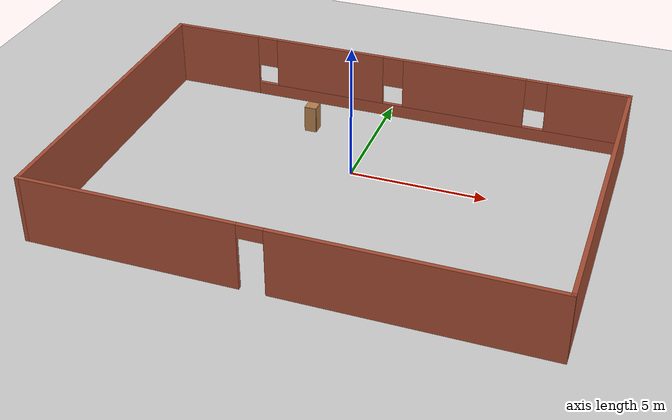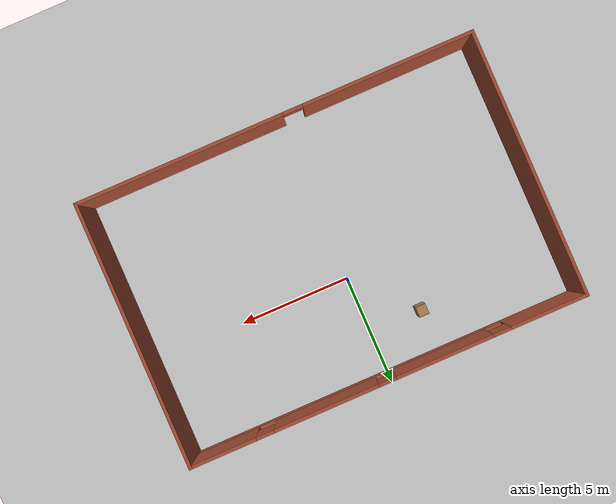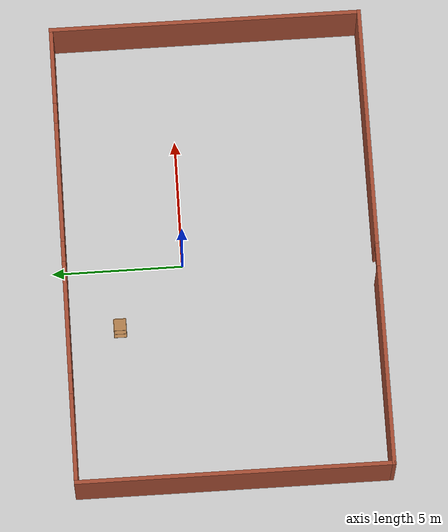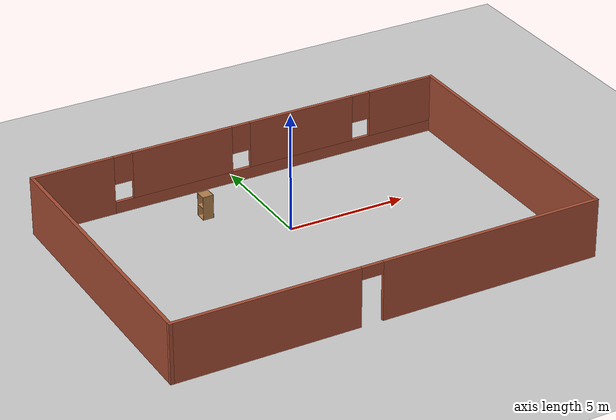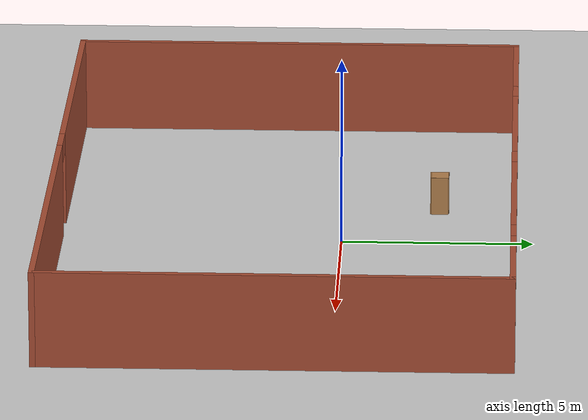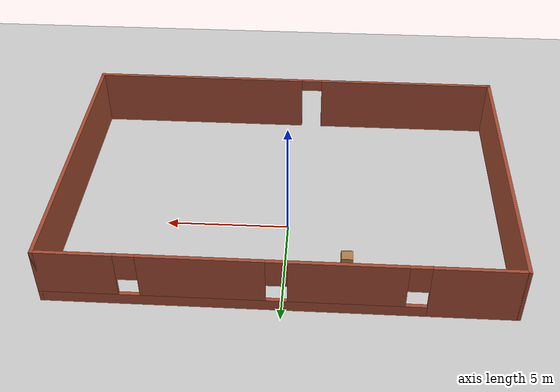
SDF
<sdf version="1.7">
 <world name="default">
  <light name="sun" type="directional">
   <pose>0 0 10 0 -0 0</pose>
   <diffuse>0.8 0.8 0.8 1</diffuse>
   <specular>0.2 0.2 0.2 1</specular>
   <attenuation>
    <range>1000</range>
    <constant>0.9</constant>
    <linear>0.01</linear>
    <quadratic>0.001</quadratic>
   </attenuation>
   <direction>-0.5 0.1 -0.9</direction>
   <spot><inner_angle>0</inner_angle><outer_angle>0</outer_angle><falloff>0</falloff></spot>
  </light>
  <model name="ground_plane">
   <static>1</static>
   <link name="link">
    <collision name="collision">
     <geometry><plane><normal>0 0 1</normal><size>100 100</size></plane></geometry>
     <surface>
      <contact><collide_bitmask>65535</collide_bitmask></contact>
      <friction><ode><mu>100</mu><mu2>50</mu2></ode></friction>
     </surface>
    </collision>
    <visual name="visual">
     <cast_shadows>0</cast_shadows>
     <geometry><plane><normal>0 0 1</normal><size>100 100</size></plane></geometry>
     <material>
      <script><uri>file://media/materials/scripts/gazebo.material</uri><name>Gazebo/Grey</name></script>
     </material>
    </visual>
   </link>
  </model>
  <gravity>0 0 -9.8</gravity>
  <magnetic_field>6e-06 2.3e-05 -4.2e-05</magnetic_field>
  <atmosphere type="adiabatic"/>
  <physics type="ode">
   <max_step_size>0.001</max_step_size>
   <real_time_factor>1</real_time_factor>
   <real_time_update_rate>1000</real_time_update_rate>
  </physics>
  <scene><ambient>0.4 0.4 0.4 1</ambient><background>0.7 0.7 0.7 1</background><shadows>1</shadows></scene>
  <audio><device>default</device></audio>
  <spherical_coordinates>
   <surface_model>EARTH_WGS84</surface_model>
   <latitude_deg>0</latitude_deg>
   <longitude_deg>0</longitude_deg>
   <elevation>0</elevation>
   <heading_deg>0</heading_deg>
  </spherical_coordinates>
  <model name="room">
   <pose>0.12464 -1.43234 0 0 -0 0</pose>
   <link name="Wall_3">
    <collision name="Wall_3_Collision">
     <geometry><box><size>12 0.15 2.5</size></box></geometry>
     <pose>0 0 1.25 0 -0 0</pose>
    </collision>
    <visual name="Wall_3_Visual">
     <pose>0 0 1.25 0 -0 0</pose>
     <geometry><box><size>12 0.15 2.5</size></box></geometry>
     <material>
      <script><uri>file://media/materials/scripts/gazebo.material</uri><name>Gazebo/Bricks</name></script>
      <ambient>1 1 1 1</ambient>
     </material>
     <meta><layer>0</layer></meta>
    </visual>
    <pose>-8.925 0 0 0 -0 1.5708</pose>
   </link>
   <link name="Wall_4">
    <pose>0 5.925 0 0 -0 0</pose>
    <visual name="Wall_4_Visual_0">
     <pose>-7.26141 0 1.25 0 -0 0</pose>
     <geometry><box><size>3.47719 0.15 2.5</size></box></geometry>
     <material>
      <script><uri>file://media/materials/scripts/gazebo.material</uri><name>Gazebo/Bricks</name></script>
      <ambient>1 1 1 1</ambient>
     </material>
     <meta><layer>0</layer></meta>
    </visual>
    <collision name="Wall_4_Collision_0">
     <geometry><box><size>3.47719 0.15 2.5</size></box></geometry>
     <pose>-7.26141 0 1.25 0 -0 0</pose>
    </collision>
    <visual name="Wall_4_Visual_1">
     <pose>1.73859 0 0.25 0 -0 0</pose>
     <geometry><box><size>14.5228 0.15 0.5</size></box></geometry>
     <material>
      <script><uri>file://media/materials/scripts/gazebo.material</uri><name>Gazebo/Bricks</name></script>
      <ambient>1 1 1 1</ambient>
     </material>
     <meta><layer>0</layer></meta>
    </visual>
    <collision name="Wall_4_Collision_1">
     <geometry><box><size>14.5228 0.15 0.5</size></box></geometry>
     <pose>1.73859 0 0.25 0 -0 0</pose>
    </collision>
    <visual name="Wall_4_Visual_2">
     <pose>-2.53733 0 1.5 0 -0 0</pose>
     <geometry><box><size>4.37097 0.15 2</size></box></geometry>
     <material>
      <script><uri>file://media/materials/scripts/gazebo.material</uri><name>Gazebo/Bricks</name></script>
      <ambient>1 1 1 1</ambient>
     </material>
     <meta><layer>0</layer></meta>
    </visual>
    <collision name="Wall_4_Collision_2">
     <geometry><box><size>4.37097 0.15 2</size></box></geometry>
     <pose>-2.53733 0 1.5 0 -0 0</pose>
    </collision>
    <visual name="Wall_4_Visual_3">
     <pose>2.80095 0 1.5 0 -0 0</pose>
     <geometry><box><size>4.70557 0.15 2</size></box></geometry>
     <material>
      <script><uri>file://media/materials/scripts/gazebo.material</uri><name>Gazebo/Bricks</name></script>
      <ambient>1 1 1 1</ambient>
     </material>
     <meta><layer>0</layer></meta>
    </visual>
    <collision name="Wall_4_Collision_3">
     <geometry><box><size>4.70557 0.15 2</size></box></geometry>
     <pose>2.80095 0 1.5 0 -0 0</pose>
    </collision>
    <visual name="Wall_4_Visual_4">
     <pose>7.47687 0 1.5 0 -0 0</pose>
     <geometry><box><size>3.04627 0.15 2</size></box></geometry>
     <material>
      <script><uri>file://media/materials/scripts/gazebo.material</uri><name>Gazebo/Bricks</name></script>
      <ambient>1 1 1 1</ambient>
     </material>
     <meta><layer>0</layer></meta>
    </visual>
    <collision name="Wall_4_Collision_4">
     <geometry><box><size>3.04627 0.15 2</size></box></geometry>
     <pose>7.47687 0 1.5 0 -0 0</pose>
    </collision>
    <visual name="Wall_4_Visual_5">
     <pose>-5.12281 0 1.9 0 -0 0</pose>
     <geometry><box><size>0.8 0.15 1.2</size></box></geometry>
     <material>
      <script><uri>file://media/materials/scripts/gazebo.material</uri><name>Gazebo/Bricks</name></script>
      <ambient>1 1 1 1</ambient>
     </material>
     <meta><layer>0</layer></meta>
    </visual>
    <collision name="Wall_4_Collision_5">
     <geometry><box><size>0.8 0.15 1.2</size></box></geometry>
     <pose>-5.12281 0 1.9 0 -0 0</pose>
    </collision>
    <visual name="Wall_4_Visual_6">
     <pose>0.048162 0 1.9 0 -0 0</pose>
     <geometry><box><size>0.8 0.15 1.2</size></box></geometry>
     <material>
      <script><uri>file://media/materials/scripts/gazebo.material</uri><name>Gazebo/Bricks</name></script>
      <ambient>1 1 1 1</ambient>
     </material>
     <meta><layer>0</layer></meta>
    </visual>
    <collision name="Wall_4_Collision_6">
     <geometry><box><size>0.8 0.15 1.2</size></box></geometry>
     <pose>0.048162 0 1.9 0 -0 0</pose>
    </collision>
    <visual name="Wall_4_Visual_7">
     <pose>5.55373 0 1.9 0 -0 0</pose>
     <geometry><box><size>0.8 0.15 1.2</size></box></geometry>
     <material>
      <script><uri>file://media/materials/scripts/gazebo.material</uri><name>Gazebo/Bricks</name></script>
      <ambient>1 1 1 1</ambient>
     </material>
     <meta><layer>0</layer></meta>
    </visual>
    <collision name="Wall_4_Collision_7">
     <geometry><box><size>0.8 0.15 1.2</size></box></geometry>
     <pose>5.55373 0 1.9 0 -0 0</pose>
    </collision>
   </link>
   <link name="Wall_5">
    <collision name="Wall_5_Collision">
     <geometry><box><size>12 0.15 2.5</size></box></geometry>
     <pose>0 0 1.25 0 -0 0</pose>
    </collision>
    <visual name="Wall_5_Visual">
     <pose>0 0 1.25 0 -0 0</pose>
     <geometry><box><size>12 0.15 2.5</size></box></geometry>
     <material>
      <script><uri>file://media/materials/scripts/gazebo.material</uri><name>Gazebo/Bricks</name></script>
      <ambient>1 1 1 1</ambient>
     </material>
     <meta><layer>0</layer></meta>
    </visual>
    <pose>8.925 0 0 0 -0 -1.5708</pose>
   </link>
   <link name="Wall_6">
    <pose>0 -5.925 0 0 -0 3.14159</pose>
    <visual name="Wall_6_Visual_0">
     <pose>-4.30803 0 1.25 0 -0 0</pose>
     <geometry><box><size>9.38395 0.15 2.5</size></box></geometry>
     <material>
      <script><uri>file://media/materials/scripts/gazebo.material</uri><name>Gazebo/Bricks</name></script>
      <ambient>1 1 1 1</ambient>
     </material>
     <meta><layer>0</layer></meta>
    </visual>
    <collision name="Wall_6_Collision_0">
     <geometry><box><size>9.38395 0.15 2.5</size></box></geometry>
     <pose>-4.30803 0 1.25 0 -0 0</pose>
    </collision>
    <visual name="Wall_6_Visual_1">
     <pose>5.14197 0 1.25 0 -0 0</pose>
     <geometry><box><size>7.71605 0.15 2.5</size></box></geometry>
     <material>
      <script><uri>file://media/materials/scripts/gazebo.material</uri><name>Gazebo/Bricks</name></script>
      <ambient>1 1 1 1</ambient>
     </material>
     <meta><layer>0</layer></meta>
    </visual>
    <collision name="Wall_6_Collision_1">
     <geometry><box><size>7.71605 0.15 2.5</size></box></geometry>
     <pose>5.14197 0 1.25 0 -0 0</pose>
    </collision>
    <visual name="Wall_6_Visual_2">
     <pose>0.833945 0 2.25 0 -0 0</pose>
     <geometry><box><size>0.9 0.15 0.5</size></box></geometry>
     <material>
      <script><uri>file://media/materials/scripts/gazebo.material</uri><name>Gazebo/Bricks</name></script>
      <ambient>1 1 1 1</ambient>
     </material>
     <meta><layer>0</layer></meta>
    </visual>
    <collision name="Wall_6_Collision_2">
     <geometry><box><size>0.9 0.15 0.5</size></box></geometry>
     <pose>0.833945 0 2.25 0 -0 0</pose>
    </collision>
   </link>
   <static>1</static>
  </model>
  <model name="cabinet">
   <static>1</static>
   <link name="cabinet_bottom_plate">
    <inertial>
     <pose>0 0 -1 0 -0 0</pose>
     <inertia><ixx>2.05</ixx><ixy>0</ixy><ixz>0</ixz><iyy>2.05</iyy><iyz>0</iyz><izz>2.05</izz></inertia>
     <mass>25</mass>
    </inertial>
    <collision name="cabinet_bottom_plate_geom">
     <pose>0 0 0.01 0 -0 0</pose>
     <geometry><box><size>0.45 0.45 0.02</size></box></geometry>
    </collision>
    <visual name="cabinet_bottom_plate_geom_visual">
     <pose>0 0 0.01 0 -0 0</pose>
     <geometry><box><size>0.45 0.45 0.02</size></box></geometry>
     <material>
      <script><uri>file://media/materials/scripts/gazebo.material</uri><name>Gazebo/Wood</name></script>
     </material>
    </visual>
    <collision name="cabinet_bottom_plate_geom_cabinet_back_plate">
     <pose>0.235 0 0.51 0 -0 0</pose>
     <geometry><box><size>0.02 0.45 1.02</size></box></geometry>
    </collision>
    <visual name="cabinet_bottom_plate_geom_cabinet_back_plate_visual">
     <pose>0.235 0 0.51 0 -0 0</pose>
     <geometry><box><size>0.02 0.45 1.02</size></box></geometry>
     <material>
      <script><uri>file://media/materials/scripts/gazebo.material</uri><name>Gazebo/Wood</name></script>
     </material>
    </visual>
    <collision name="cabinet_bottom_plate_geom_cabinet_left_plate">
     <pose>0 0.235 0.51 0 -0 0</pose>
     <geometry><box><size>0.45 0.02 1.02</size></box></geometry>
    </collision>
    <visual name="cabinet_bottom_plate_geom_cabinet_left_plate_visual">
     <pose>0 0.235 0.51 0 -0 0</pose>
     <geometry><box><size>0.45 0.02 1.02</size></box></geometry>
     <material>
      <script><uri>file://media/materials/scripts/gazebo.material</uri><name>Gazebo/Wood</name></script>
     </material>
    </visual>
    <collision name="cabinet_bottom_plate_geom_cabinet_middle_plate">
     <pose>0 0 0.51 0 -0 0</pose>
     <geometry><box><size>0.45 0.45 0.02</size></box></geometry>
    </collision>
    <visual name="cabinet_bottom_plate_geom_cabinet_middle_plate_visual">
     <pose>0 0 0.51 0 -0 0</pose>
     <geometry><box><size>0.45 0.45 0.02</size></box></geometry>
     <material>
      <script><uri>file://media/materials/scripts/gazebo.material</uri><name>Gazebo/Wood</name></script>
     </material>
    </visual>
    <collision name="cabinet_bottom_plate_geom_cabinet_right_plate">
     <pose>0 -0.235 0.51 0 -0 0</pose>
     <geometry><box><size>0.45 0.02 1.02</size></box></geometry>
    </collision>
    <visual name="cabinet_bottom_plate_geom_cabinet_right_plate_visual">
     <pose>0 -0.235 0.51 0 -0 0</pose>
     <geometry><box><size>0.45 0.02 1.02</size></box></geometry>
     <material>
      <script><uri>file://media/materials/scripts/gazebo.material</uri><name>Gazebo/Wood</name></script>
     </material>
    </visual>
    <collision name="cabinet_bottom_plate_geom_cabinet_top_plate">
     <pose>0 0 1.01 0 -0 0</pose>
     <geometry><box><size>0.45 0.45 0.02</size></box></geometry>
    </collision>
    <visual name="cabinet_bottom_plate_geom_cabinet_top_plate_visual">
     <pose>0 0 1.01 0 -0 0</pose>
     <geometry><box><size>0.45 0.45 0.02</size></box></geometry>
     <material>
      <script><uri>file://media/materials/scripts/gazebo.material</uri><name>Gazebo/Wood</name></script>
     </material>
    </visual>
   </link>
   <pose>-2.42869 2.52503 0 0 -0 0</pose>
  </model>
 </world>
</sdf>
